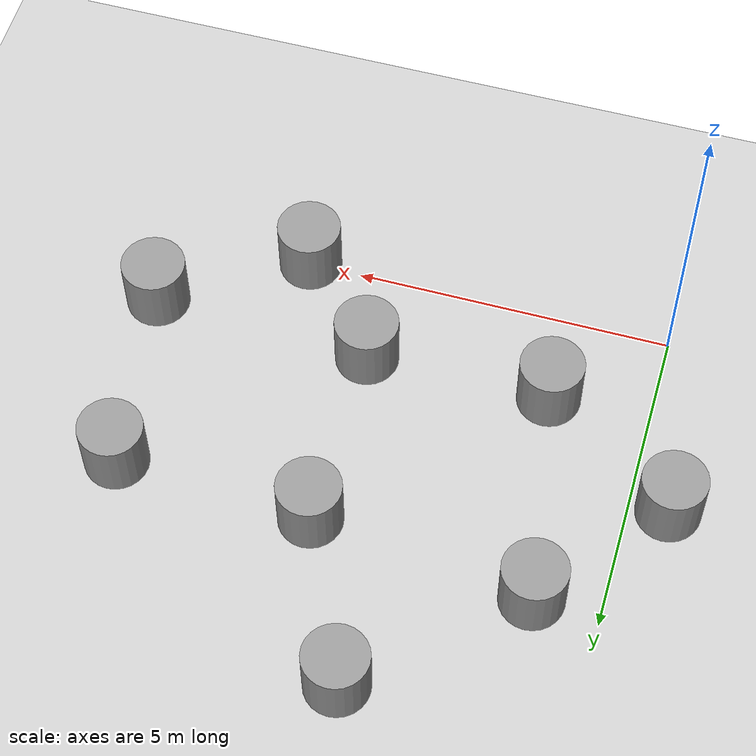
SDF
<sdf version="1.7">
 <world name="default">
  <model name="ground_plane">
   <static>1</static>
   <link name="link">
    <collision name="collision">
     <geometry><plane><normal>0 0 1</normal><size>100 100</size></plane></geometry>
     <surface><friction><ode><mu>100</mu><mu2>50</mu2></ode></friction></surface>
    </collision>
    <visual name="visual">
     <cast_shadows>0</cast_shadows>
     <geometry><plane><normal>0 0 1</normal><size>100 100</size></plane></geometry>
     <material>
      <script><uri>file://media/materials/scripts/gazebo.material</uri><name>Gazebo/Grey</name></script>
     </material>
    </visual>
   </link>
  </model>
  <light name="sun" type="directional">
   <pose>0 0 10 0 -0 0</pose>
   <diffuse>0.8 0.8 0.8 1</diffuse>
   <specular>0.2 0.2 0.2 1</specular>
   <attenuation>
    <range>1000</range>
    <constant>0.9</constant>
    <linear>0.01</linear>
    <quadratic>0.001</quadratic>
   </attenuation>
   <direction>-0.5 0.1 -0.9</direction>
   <spot><inner_angle>0</inner_angle><outer_angle>0</outer_angle><falloff>0</falloff></spot>
  </light>
  <scene><shadows>0</shadows><ambient>0.4 0.4 0.4 1</ambient><background>0.7 0.7 0.7 1</background></scene>
  <physics type="ode">
   <real_time_update_rate>1000</real_time_update_rate>
   <max_step_size>0.001</max_step_size>
   <real_time_factor>1</real_time_factor>
   <ode>
    <solver>
     <type>quick</type>
     <iters>150</iters>
     <precon_iters>0</precon_iters>
     <sor>1.4</sor>
     <use_dynamic_moi_rescaling>1</use_dynamic_moi_rescaling>
    </solver>
    <constraints>
     <cfm>1e-05</cfm>
     <erp>0.2</erp>
     <contact_max_correcting_vel>2000</contact_max_correcting_vel>
     <contact_surface_layer>0.01</contact_surface_layer>
    </constraints>
   </ode>
  </physics>
  <gravity>0 0 -9.8</gravity>
  <magnetic_field>6e-06 2.3e-05 -4.2e-05</magnetic_field>
  <atmosphere type="adiabatic"/>
  <spherical_coordinates>
   <surface_model>EARTH_WGS84</surface_model>
   <latitude_deg>0</latitude_deg>
   <longitude_deg>0</longitude_deg>
   <elevation>0</elevation>
   <heading_deg>0</heading_deg>
  </spherical_coordinates>
  <light name="user_spot_light_0" type="spot">
   <pose>-0.036354 -0.142955 1 0 -0 0</pose>
   <diffuse>0.5 0.5 0.5 1</diffuse>
   <specular>0.1 0.1 0.1 1</specular>
   <direction>0 0 -1</direction>
   <attenuation>
    <range>20</range>
    <constant>0.5</constant>
    <linear>0.01</linear>
    <quadratic>0.001</quadratic>
   </attenuation>
   <cast_shadows>0</cast_shadows>
   <spot><inner_angle>0.6</inner_angle><outer_angle>1</outer_angle><falloff>1</falloff></spot>
  </light>
  <light name="user_spot_light_1" type="spot">
   <pose>2.78378 -0.012268 1 0 -0 0</pose>
   <diffuse>0.5 0.5 0.5 1</diffuse>
   <specular>0.1 0.1 0.1 1</specular>
   <direction>0 0 -1</direction>
   <attenuation>
    <range>20</range>
    <constant>0.5</constant>
    <linear>0.01</linear>
    <quadratic>0.001</quadratic>
   </attenuation>
   <cast_shadows>0</cast_shadows>
   <spot><inner_angle>0.6</inner_angle><outer_angle>1</outer_angle><falloff>1</falloff></spot>
  </light>
  <light name="user_spot_light_2" type="spot">
   <pose>2.82338 2.84925 1 0 -0 0</pose>
   <diffuse>0.5 0.5 0.5 1</diffuse>
   <specular>0.1 0.1 0.1 1</specular>
   <direction>0 0 -1</direction>
   <attenuation>
    <range>20</range>
    <constant>0.5</constant>
    <linear>0.01</linear>
    <quadratic>0.001</quadratic>
   </attenuation>
   <cast_shadows>0</cast_shadows>
   <spot><inner_angle>0.6</inner_angle><outer_angle>1</outer_angle><falloff>1</falloff></spot>
  </light>
  <light name="user_spot_light_3" type="spot">
   <pose>5.85457 2.92776 1 0 -0 0</pose>
   <diffuse>0.5 0.5 0.5 1</diffuse>
   <specular>0.1 0.1 0.1 1</specular>
   <direction>0 0 -1</direction>
   <attenuation>
    <range>20</range>
    <constant>0.5</constant>
    <linear>0.01</linear>
    <quadratic>0.001</quadratic>
   </attenuation>
   <cast_shadows>0</cast_shadows>
   <spot><inner_angle>0.6</inner_angle><outer_angle>1</outer_angle><falloff>1</falloff></spot>
  </light>
  <light name="user_spot_light_4" type="spot">
   <pose>5.83988 5.7191 1 0 -0 0</pose>
   <diffuse>0.5 0.5 0.5 1</diffuse>
   <specular>0.1 0.1 0.1 1</specular>
   <direction>0 0 -1</direction>
   <attenuation>
    <range>20</range>
    <constant>0.5</constant>
    <linear>0.01</linear>
    <quadratic>0.001</quadratic>
   </attenuation>
   <cast_shadows>0</cast_shadows>
   <spot><inner_angle>0.6</inner_angle><outer_angle>1</outer_angle><falloff>1</falloff></spot>
  </light>
  <model name="unit_cylinder">
   <pose>4.5129 4.43206 0.499997 -4e-06 -4e-06 -0</pose>
   <link name="link">
    <inertial>
     <mass>1</mass>
     <inertia><ixx>0.145833</ixx><ixy>0</ixy><ixz>0</ixz><iyy>0.145833</iyy><iyz>0</iyz><izz>0.125</izz></inertia>
    </inertial>
    <collision name="collision">
     <geometry><cylinder><radius>0.5</radius><length>1</length></cylinder></geometry>
    </collision>
    <visual name="visual">
     <geometry><cylinder><radius>0.5</radius><length>1</length></cylinder></geometry>
     <material>
      <script><name>Gazebo/Grey</name><uri>file://media/materials/scripts/gazebo.material</uri></script>
     </material>
    </visual>
   </link>
  </model>
  <model name="unit_cylinder_0">
   <pose>1.57978 1.44332 0.499997 -4e-06 -4e-06 -0</pose>
   <link name="link">
    <inertial>
     <mass>1</mass>
     <inertia><ixx>0.145833</ixx><ixy>0</ixy><ixz>0</ixz><iyy>0.145833</iyy><iyz>0</iyz><izz>0.125</izz></inertia>
    </inertial>
    <collision name="collision">
     <geometry><cylinder><radius>0.5</radius><length>1</length></cylinder></geometry>
    </collision>
    <visual name="visual">
     <geometry><cylinder><radius>0.5</radius><length>1</length></cylinder></geometry>
     <material>
      <script><name>Gazebo/Grey</name><uri>file://media/materials/scripts/gazebo.material</uri></script>
     </material>
    </visual>
   </link>
  </model>
  <model name="unit_cylinder_1">
   <pose>4.48222 1.46633 0.499997 -4e-06 -4e-06 -0</pose>
   <link name="link">
    <inertial>
     <mass>1</mass>
     <inertia><ixx>0.145833</ixx><ixy>0</ixy><ixz>0</ixz><iyy>0.145833</iyy><iyz>0</iyz><izz>0.125</izz></inertia>
    </inertial>
    <collision name="collision">
     <geometry><cylinder><radius>0.5</radius><length>1</length></cylinder></geometry>
    </collision>
    <visual name="visual">
     <geometry><cylinder><radius>0.5</radius><length>1</length></cylinder></geometry>
     <material>
      <script><name>Gazebo/Grey</name><uri>file://media/materials/scripts/gazebo.material</uri></script>
     </material>
    </visual>
   </link>
  </model>
  <model name="unit_cylinder_2">
   <pose>5.84116 -0.014869 0.499997 -4e-06 -4e-06 -0</pose>
   <link name="link">
    <inertial>
     <mass>1</mass>
     <inertia><ixx>0.145833</ixx><ixy>0</ixy><ixz>0</ixz><iyy>0.145833</iyy><iyz>0</iyz><izz>0.125</izz></inertia>
    </inertial>
    <collision name="collision">
     <geometry><cylinder><radius>0.5</radius><length>1</length></cylinder></geometry>
    </collision>
    <visual name="visual">
     <geometry><cylinder><radius>0.5</radius><length>1</length></cylinder></geometry>
     <material>
      <script><name>Gazebo/Grey</name><uri>file://media/materials/scripts/gazebo.material</uri></script>
     </material>
    </visual>
   </link>
  </model>
  <model name="unit_cylinder_3">
   <pose>1.03115 4.85221 0.499997 -4e-06 -4e-06 -0</pose>
   <link name="link">
    <inertial>
     <mass>1</mass>
     <inertia><ixx>0.145833</ixx><ixy>0</ixy><ixz>0</ixz><iyy>0.145833</iyy><iyz>0</iyz><izz>0.125</izz></inertia>
    </inertial>
    <collision name="collision">
     <geometry><cylinder><radius>0.5</radius><length>1</length></cylinder></geometry>
    </collision>
    <visual name="visual">
     <geometry><cylinder><radius>0.5</radius><length>1</length></cylinder></geometry>
     <material>
      <script><name>Gazebo/Grey</name><uri>file://media/materials/scripts/gazebo.material</uri></script>
     </material>
    </visual>
   </link>
  </model>
  <model name="unit_cylinder_4">
   <pose>7.62456 4.26236 0.499997 -4e-06 -4e-06 -0</pose>
   <link name="link">
    <inertial>
     <mass>1</mass>
     <inertia><ixx>0.145833</ixx><ixy>0</ixy><ixz>0</ixz><iyy>0.145833</iyy><iyz>0</iyz><izz>0.125</izz></inertia>
    </inertial>
    <collision name="collision">
     <geometry><cylinder><radius>0.5</radius><length>1</length></cylinder></geometry>
    </collision>
    <visual name="visual">
     <geometry><cylinder><radius>0.5</radius><length>1</length></cylinder></geometry>
     <material>
      <script><name>Gazebo/Grey</name><uri>file://media/materials/scripts/gazebo.material</uri></script>
     </material>
    </visual>
   </link>
  </model>
  <model name="unit_cylinder_5">
   <pose>7.97033 1.30259 0.499997 -4e-06 -4e-06 -0</pose>
   <link name="link">
    <inertial>
     <mass>1</mass>
     <inertia><ixx>0.145833</ixx><ixy>0</ixy><ixz>0</ixz><iyy>0.145833</iyy><iyz>0</iyz><izz>0.125</izz></inertia>
    </inertial>
    <collision name="collision">
     <geometry><cylinder><radius>0.5</radius><length>1</length></cylinder></geometry>
    </collision>
    <visual name="visual">
     <geometry><cylinder><radius>0.5</radius><length>1</length></cylinder></geometry>
     <material>
      <script><name>Gazebo/Grey</name><uri>file://media/materials/scripts/gazebo.material</uri></script>
     </material>
    </visual>
   </link>
  </model>
  <model name="unit_cylinder_6">
   <pose>-0.595006 2.90662 0.499997 -4e-06 -4e-06 -0</pose>
   <link name="link">
    <inertial>
     <mass>1</mass>
     <inertia><ixx>0.145833</ixx><ixy>0</ixy><ixz>0</ixz><iyy>0.145833</iyy><iyz>0</iyz><izz>0.125</izz></inertia>
    </inertial>
    <collision name="collision">
     <geometry><cylinder><radius>0.5</radius><length>1</length></cylinder></geometry>
    </collision>
    <visual name="visual">
     <geometry><cylinder><radius>0.5</radius><length>1</length></cylinder></geometry>
     <material>
      <script><name>Gazebo/Grey</name><uri>file://media/materials/scripts/gazebo.material</uri></script>
     </material>
    </visual>
   </link>
  </model>
  <model name="unit_cylinder_7">
   <pose>3.38313 6.90044 0.499997 -4e-06 -4e-06 -0</pose>
   <link name="link">
    <inertial>
     <mass>1</mass>
     <inertia><ixx>0.145833</ixx><ixy>0</ixy><ixz>0</ixz><iyy>0.145833</iyy><iyz>0</iyz><izz>0.125</izz></inertia>
    </inertial>
    <collision name="collision">
     <geometry><cylinder><radius>0.5</radius><length>1</length></cylinder></geometry>
    </collision>
    <visual name="visual">
     <geometry><cylinder><radius>0.5</radius><length>1</length></cylinder></geometry>
     <material>
      <script><name>Gazebo/Grey</name><uri>file://media/materials/scripts/gazebo.material</uri></script>
     </material>
    </visual>
   </link>
  </model>
 </world>
</sdf>
